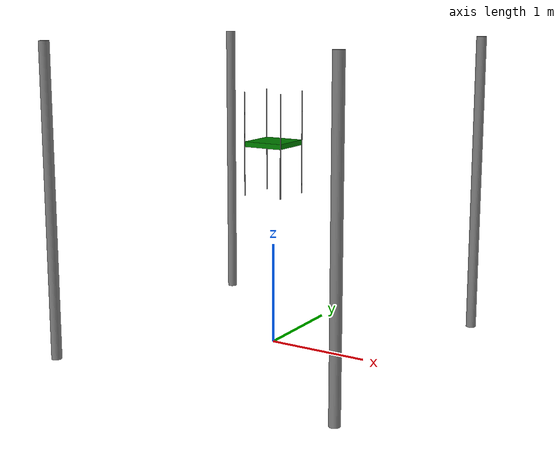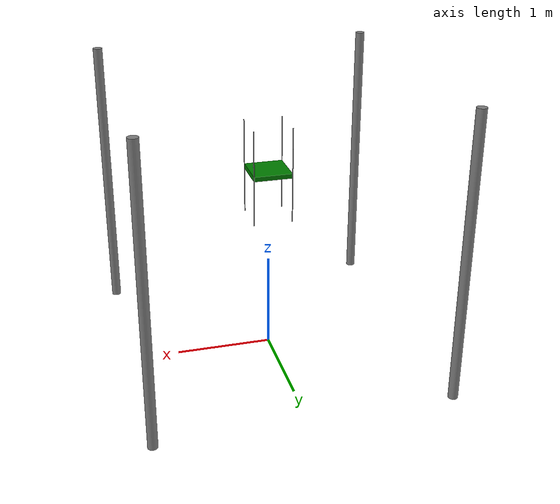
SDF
<?xml version="1.0" ?>
<sdf version="1.6">
  <model name="cdpr">
    <!-- Platform (Root Link) -->
    <link name="platform">
      <pose>0 0 2 0 0 0</pose>
      <inertial>
        <mass>1.0</mass>
        <inertia>
          <ixx>1</ixx>
          <iyy>1</iyy>
          <izz>1</izz>
          <ixy>0</ixy>
          <ixz>0</ixz>
          <iyz>0</iyz>
        </inertia>
      </inertial>
      <collision name="platform_collision">
        <geometry>
          <box>
            <size>0.4 0.4 0.05</size>
          </box>
        </geometry>
      </collision>
      <visual name="platform_visual">
        <geometry>
          <box>
            <size>0.4 0.4 0.05</size>
          </box>
        </geometry>
        <material>
          <ambient>0 0.5 0 1</ambient>
          <diffuse>0 0.5 0 1</diffuse>
          <specular>0.1 0.1 0.1 1</specular>
        </material>
      </visual>
    </link>

    <!-- Fixed Pillars -->
    <link name="pillar_1">
      <pose>1.5 1.5 1.5 0 0 0</pose>
      <inertial>
        <mass>1e6</mass>
        <inertia>
          <ixx>1e6</ixx>
          <iyy>1e6</iyy>
          <izz>1e6</izz>
          <ixy>0</ixy>
          <ixz>0</ixz>
          <iyz>0</iyz>
        </inertia>
      </inertial>
      <collision name="pillar_1_collision">
        <geometry>
          <cylinder>
            <radius>0.05</radius>
            <length>3.0</length>
          </cylinder>
        </geometry>
      </collision>
      <visual name="pillar_1_visual">
        <geometry>
          <cylinder>
            <radius>0.05</radius>
            <length>3.0</length>
          </cylinder>
        </geometry>
        <material>
          <ambient>0.5 0.5 0.5 1</ambient>
          <diffuse>0.5 0.5 0.5 1</diffuse>
        </material>
      </visual>
    </link>

    <!-- Repeat for other pillars with different poses -->
    <link name="pillar_2">
      <pose>-1.5 1.5 1.5 0 0 0</pose>
      <inertial>
        <mass>1e6</mass>
        <inertia>
          <ixx>1e6</ixx>
          <iyy>1e6</iyy>
          <izz>1e6</izz>
          <ixy>0</ixy>
          <ixz>0</ixz>
          <iyz>0</iyz>
        </inertia>
      </inertial>
      <collision name="pillar_2_collision">
        <geometry>
          <cylinder>
            <radius>0.05</radius>
            <length>3.0</length>
          </cylinder>
        </geometry>
      </collision>
      <visual name="pillar_2_visual">
        <geometry>
          <cylinder>
            <radius>0.05</radius>
            <length>3.0</length>
          </cylinder>
        </geometry>
        <material>
          <ambient>0.5 0.5 0.5 1</ambient>
          <diffuse>0.5 0.5 0.5 1</diffuse>
        </material>
      </visual>
    </link>
    <link name="pillar_3">
      <pose>-1.5 -1.5 1.5 0 0 0</pose>
      <inertial>
        <mass>1e6</mass>
        <inertia>
          <ixx>1e6</ixx>
          <iyy>1e6</iyy>
          <izz>1e6</izz>
          <ixy>0</ixy>
          <ixz>0</ixz>
          <iyz>0</iyz>
        </inertia>
      </inertial>
      <collision name="pillar_3_collision">
        <geometry>
          <cylinder>
            <radius>0.05</radius>
            <length>3.0</length>
          </cylinder>
        </geometry>
      </collision>
      <visual name="pillar_3_visual">
        <geometry>
          <cylinder>
            <radius>0.05</radius>
            <length>3.0</length>
          </cylinder>
        </geometry>
        <material>
          <ambient>0.5 0.5 0.5 1</ambient>
          <diffuse>0.5 0.5 0.5 1</diffuse>
        </material>
      </visual>
    </link>
    <link name="pillar_4">
      <pose>1.5 -1.5 1.5 0 0 0</pose>
      <inertial>
        <mass>1e6</mass>
        <inertia>
          <ixx>1e6</ixx>
          <iyy>1e6</iyy>
          <izz>1e6</izz>
          <ixy>0</ixy>
          <ixz>0</ixz>
          <iyz>0</iyz>
        </inertia>
      </inertial>
      <collision name="pillar_4_collision">
        <geometry>
          <cylinder>
            <radius>0.05</radius>
            <length>3.0</length>
          </cylinder>
        </geometry>
      </collision>
      <visual name="pillar_4_visual">
        <geometry>
          <cylinder>
            <radius>0.05</radius>
            <length>3.0</length>
          </cylinder>
        </geometry>
        <material>
          <ambient>0.5 0.5 0.5 1</ambient>
          <diffuse>0.5 0.5 0.5 1</diffuse>
        </material>
      </visual>
    </link>

    <!-- Cable Systems -->
    <!-- Cable 1 -->
    <link name="cable_1">
      <pose relative_to="platform">0.2 0.2 0 0 0 0</pose>
      <inertial>
        <mass>1e-6</mass>
        <inertia>
          <ixx>1e-6</ixx>
          <iyy>1e-6</iyy>
          <izz>1e-6</izz>
          <ixy>0</ixy>
          <ixz>0</ixz>
          <iyz>0</iyz>
        </inertia>
      </inertial>
      <visual name="cable_1_visual">
        <geometry>
          <cylinder>
            <radius>0.005</radius>
            <length>1.0</length>
          </cylinder>
        </geometry>
        <material>
          <ambient>0 0 0 1</ambient>
          <diffuse>0 0 0 1</diffuse>
        </material>
      </visual>
    </link>

    <joint name="cable_1_prismatic" type="prismatic">
      <parent>platform</parent>
      <child>cable_1</child>
      <axis>
        <xyz>0 0 1</xyz>
        <limit>
          <lower>0</lower>
          <upper>5.0</upper>
          <effort>1000</effort>
          <velocity>1.0</velocity>
        </limit>
        <dynamics>
          <damping>1.0</damping>
          <spring_reference>0</spring_reference>
          <spring_stiffness>100</spring_stiffness>
        </dynamics>
      </axis>
    </joint>

    <!-- Repeat for other cables with appropriate poses -->
    <link name="cable_2">
      <pose relative_to="platform">0.2 -0.2 0 0 0 0</pose>
      <inertial>
        <mass>1e-6</mass>
        <inertia>
          <ixx>1e-6</ixx>
          <iyy>1e-6</iyy>
          <izz>1e-6</izz>
          <ixy>0</ixy>
          <ixz>0</ixz>
          <iyz>0</iyz>
        </inertia>
      </inertial>
      <visual name="cable_2_visual">
        <geometry>
          <cylinder>
            <radius>0.005</radius>
            <length>1.0</length>
          </cylinder>
        </geometry>
        <material>
          <ambient>0 0 0 1</ambient>
          <diffuse>0 0 0 1</diffuse>
        </material>
      </visual>
    </link>

    <joint name="cable_2_prismatic" type="prismatic">
      <parent>platform</parent>
      <child>cable_2</child>
      <axis>
        <xyz>0 0 1</xyz>
        <limit>
          <lower>0</lower>
          <upper>5.0</upper>
          <effort>1000</effort>
          <velocity>1.0</velocity>
        </limit>
        <dynamics>
          <damping>1.0</damping>
          <spring_reference>0</spring_reference>
          <spring_stiffness>100</spring_stiffness>
        </dynamics>
      </axis>
    </joint>

    <link name="cable_3">
      <pose relative_to="platform">-0.2 0.2 0 0 0 0</pose>
      <inertial>
        <mass>1e-6</mass>
        <inertia>
          <ixx>1e-6</ixx>
          <iyy>1e-6</iyy>
          <izz>1e-6</izz>
          <ixy>0</ixy>
          <ixz>0</ixz>
          <iyz>0</iyz>
        </inertia>
      </inertial>
      <visual name="cable_3_visual">
        <geometry>
          <cylinder>
            <radius>0.005</radius>
            <length>1.0</length>
          </cylinder>
        </geometry>
        <material>
          <ambient>0 0 0 1</ambient>
          <diffuse>0 0 0 1</diffuse>
        </material>
      </visual>
    </link>

    <joint name="cable_3_prismatic" type="prismatic">
      <parent>platform</parent>
      <child>cable_3</child>
      <axis>
        <xyz>0 0 1</xyz>
        <limit>
          <lower>0</lower>
          <upper>5.0</upper>
          <effort>1000</effort>
          <velocity>1.0</velocity>
        </limit>
        <dynamics>
          <damping>1.0</damping>
          <spring_reference>0</spring_reference>
          <spring_stiffness>100</spring_stiffness>
        </dynamics>
      </axis>
    </joint>

    <link name="cable_4">
      <pose relative_to="platform">-0.2 -0.2 0 0 0 0</pose>
      <inertial>
        <mass>1e-6</mass>
        <inertia>
          <ixx>1e-6</ixx>
          <iyy>1e-6</iyy>
          <izz>1e-6</izz>
          <ixy>0</ixy>
          <ixz>0</ixz>
          <iyz>0</iyz>
        </inertia>
      </inertial>
      <visual name="cable_4_visual">
        <geometry>
          <cylinder>
            <radius>0.005</radius>
            <length>1.0</length>
          </cylinder>
        </geometry>
        <material>
          <ambient>0 0 0 1</ambient>
          <diffuse>0 0 0 1</diffuse>
        </material>
      </visual>
    </link>

    <joint name="cable_4_prismatic" type="prismatic">
      <parent>platform</parent>
      <child>cable_4</child>
      <axis>
        <xyz>0 0 1</xyz>
        <limit>
          <lower>0</lower>
          <upper>5.0</upper>
          <effort>1000</effort>
          <velocity>1.0</velocity>
        </limit>
        <dynamics>
          <damping>1.0</damping>
          <spring_reference>0</spring_reference>
          <spring_stiffness>100</spring_stiffness>
        </dynamics>
      </axis>
    </joint>

    <!-- Joint State Publisher Plugin -->
    <plugin name="joint_state_publisher" filename="libgazebo_ros_joint_state_publisher.so">
      <robotNamespace>cdpr</robotNamespace>
      <jointName>cable_1_prismatic, cable_2_prismatic, cable_3_prismatic, cable_4_prismatic</jointName>
      <updateRate>50</updateRate>
    </plugin>

    <!-- Static Constraints for Pillars -->
    <joint name="pillar_1_fixed" type="fixed">
      <parent>world</parent>
      <child>pillar_1</child>
    </joint>
    <joint name="pillar_2_fixed" type="fixed">
      <parent>world</parent>
      <child>pillar_2</child>
    </joint>
    <joint name="pillar_3_fixed" type="fixed">
      <parent>world</parent>
      <child>pillar_3</child>
    </joint>
    <joint name="pillar_4_fixed" type="fixed">
      <parent>world</parent>
      <child>pillar_4</child>
    </joint>

  </model>
</sdf>
